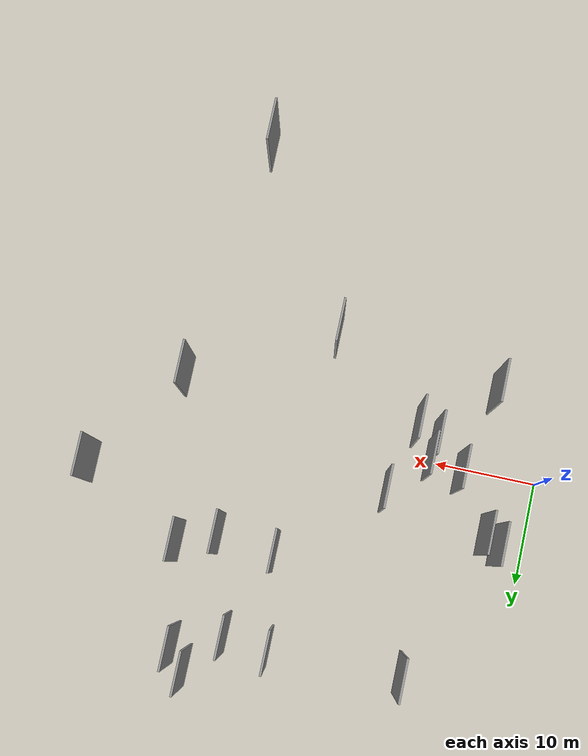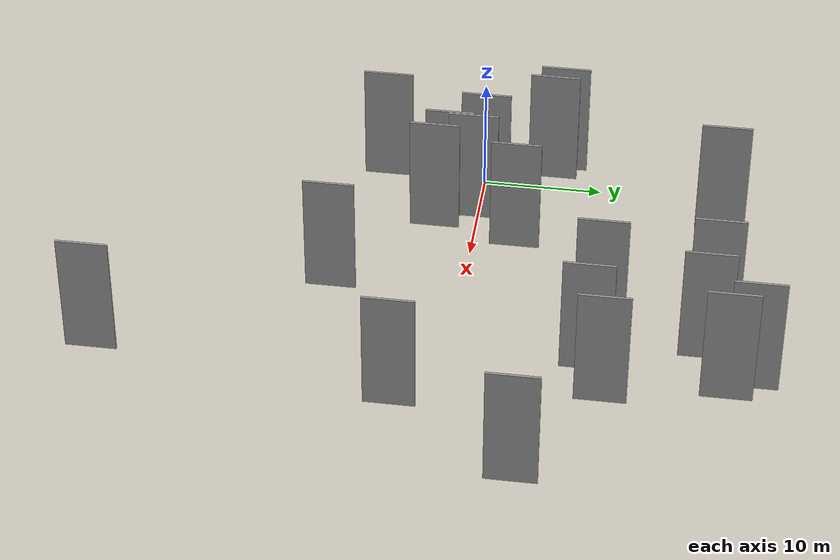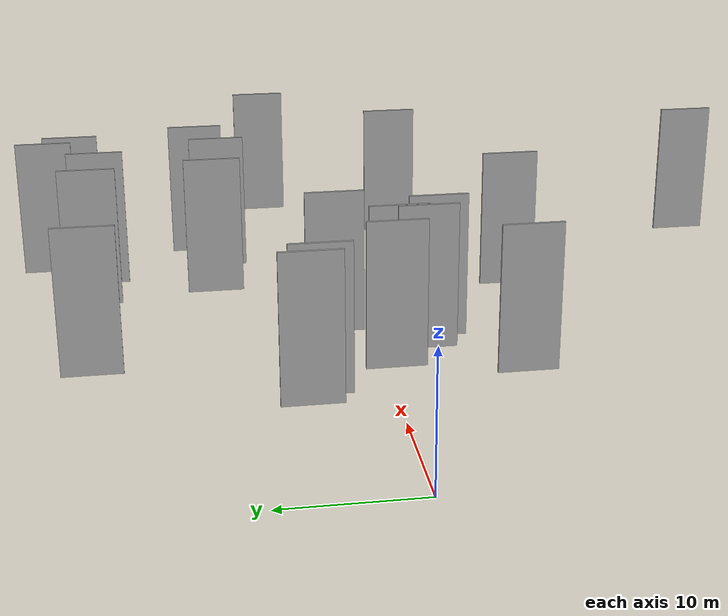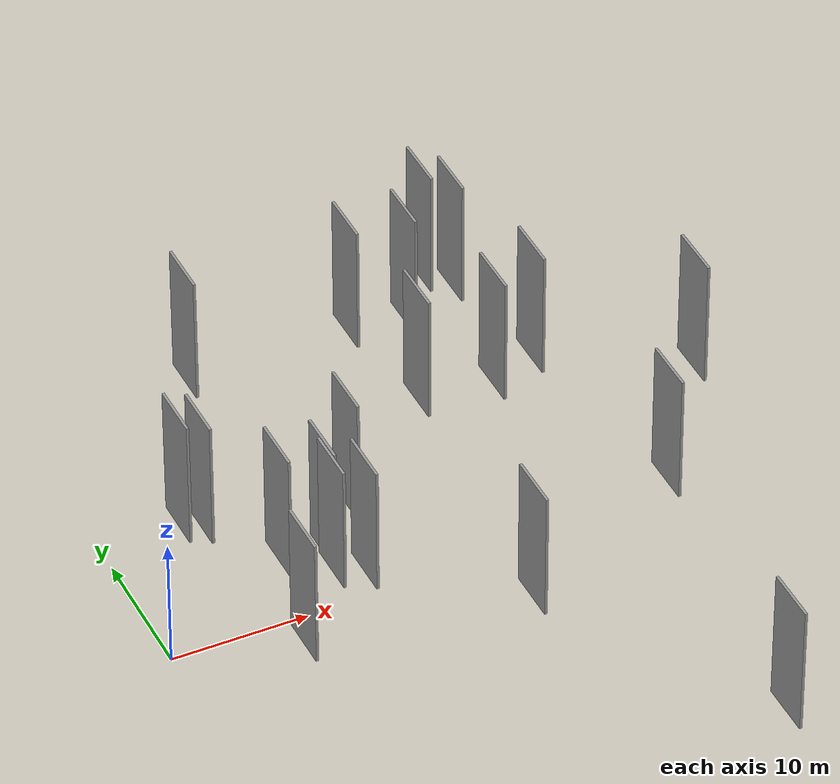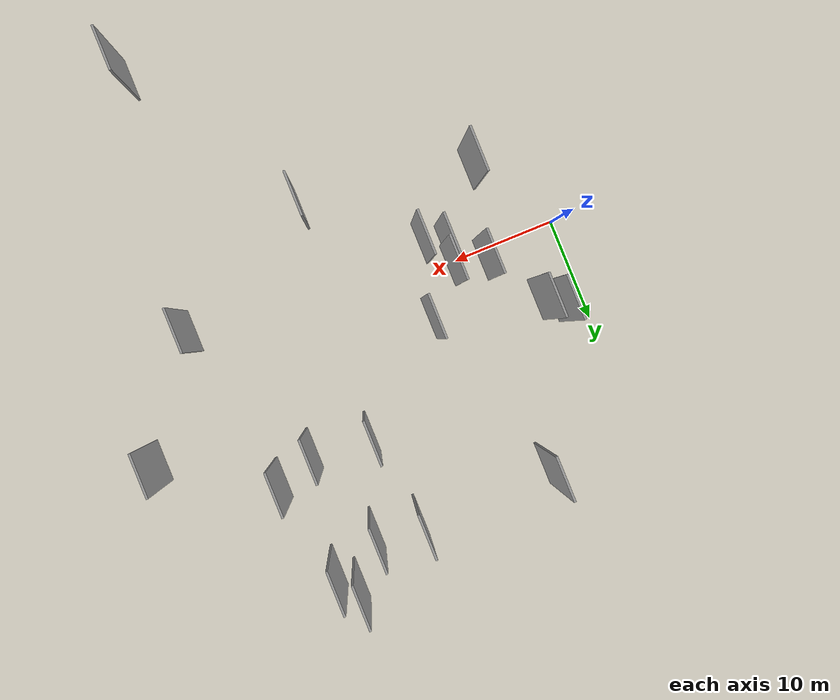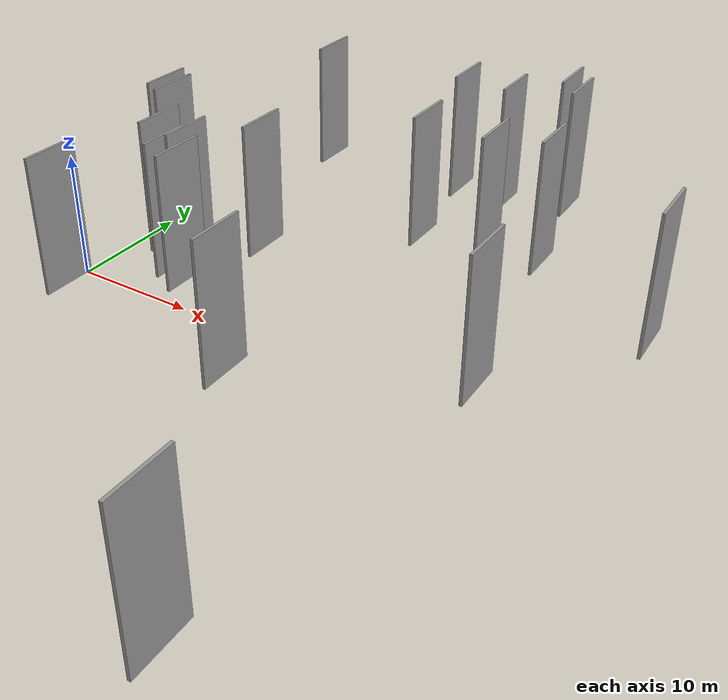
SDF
<sdf version="1.6">
 <world name="default">
  <scene>
   <sky><clouds><speed>12</speed></clouds></sky>
   <ambient>0.4 0.4 0.4 1</ambient>
   <background>0.7 0.7 0.7 1</background>
   <shadows>1</shadows>
  </scene>
  <gravity>0 0 -9.8066</gravity>
  <magnetic_field>6e-06 2.3e-05 -4.2e-05</magnetic_field>
  <physics default="0" name="default_physics" type="ode">
   <ode>
    <solver>
     <type>quick</type>
     <iters>10</iters>
     <sor>1.0</sor>
     <use_dynamic_moi_rescaling>0</use_dynamic_moi_rescaling>
    </solver>
    <constraints>
     <cfm>0</cfm>
     <erp>0.2</erp>
     <contact_max_correcting_vel>100</contact_max_correcting_vel>
     <contact_surface_layer>0.001</contact_surface_layer>
    </constraints>
   </ode>
   <max_step_size>0.004</max_step_size>
   <real_time_factor>1</real_time_factor>
   <real_time_update_rate>250</real_time_update_rate>
  </physics>
  <light name="sun" type="directional">
   <pose>0 0 10 0 0 0</pose>
   <diffuse>0.8 0.8 0.8 1</diffuse>
   <specular>0.2 0.2 0.2 1</specular>
   <attenuation>
    <range>1000</range>
    <constant>0.9</constant>
    <linear>0.01</linear>
    <quadratic>0.001</quadratic>
   </attenuation>
   <direction>-0.5 0.1 -0.9</direction>
  </light>
  <model name="grey_wall_1">
   <static>1</static>
   <pose>11.1297 -1.5539 5.0 0.000000 0.000000 1.570796</pose>
   <link name="link">
    <pose>0 0 5.00 0 0 0</pose>
    <collision name="collision"><geometry><box><size>4.00 0.2 10.00</size></box></geometry></collision>
    <visual name="visual">
     <cast_shadows>0</cast_shadows>
     <geometry><box><size>4.00 0.2 10.00</size></box></geometry>
     <material>
      <script>
       <uri>model://grey_wall/materials/scripts</uri>
       <uri>model://grey_wall/materials/textures</uri>
       <name>vrc/grey_wall</name>
      </script>
     </material>
    </visual>
   </link>
  </model>
  <model name="grey_wall_2">
   <static>1</static>
   <pose>29.5291 23.8519 5.0 0.000000 0.000000 1.570796</pose>
   <link name="link">
    <pose>0 0 5.00 0 0 0</pose>
    <collision name="collision"><geometry><box><size>4.00 0.2 10.00</size></box></geometry></collision>
    <visual name="visual">
     <cast_shadows>0</cast_shadows>
     <geometry><box><size>4.00 0.2 10.00</size></box></geometry>
     <material>
      <script>
       <uri>model://grey_wall/materials/scripts</uri>
       <uri>model://grey_wall/materials/textures</uri>
       <name>vrc/grey_wall</name>
      </script>
     </material>
    </visual>
   </link>
  </model>
  <model name="grey_wall_3">
   <static>1</static>
   <pose>10.1444 20.3905 5.0 0.000000 0.000000 1.570796</pose>
   <link name="link">
    <pose>0 0 5.00 0 0 0</pose>
    <collision name="collision"><geometry><box><size>4.00 0.2 10.00</size></box></geometry></collision>
    <visual name="visual">
     <cast_shadows>0</cast_shadows>
     <geometry><box><size>4.00 0.2 10.00</size></box></geometry>
     <material>
      <script>
       <uri>model://grey_wall/materials/scripts</uri>
       <uri>model://grey_wall/materials/textures</uri>
       <name>vrc/grey_wall</name>
      </script>
     </material>
    </visual>
   </link>
  </model>
  <model name="grey_wall_4">
   <static>1</static>
   <pose>14.7933 4.1425 5.0 0.000000 0.000000 1.570796</pose>
   <link name="link">
    <pose>0 0 5.00 0 0 0</pose>
    <collision name="collision"><geometry><box><size>4.00 0.2 10.00</size></box></geometry></collision>
    <visual name="visual">
     <cast_shadows>0</cast_shadows>
     <geometry><box><size>4.00 0.2 10.00</size></box></geometry>
     <material>
      <script>
       <uri>model://grey_wall/materials/scripts</uri>
       <uri>model://grey_wall/materials/textures</uri>
       <name>vrc/grey_wall</name>
      </script>
     </material>
    </visual>
   </link>
  </model>
  <model name="grey_wall_5">
   <static>1</static>
   <pose>8.3666 0.9878 5.0 0.000000 0.000000 1.570796</pose>
   <link name="link">
    <pose>0 0 5.00 0 0 0</pose>
    <collision name="collision"><geometry><box><size>4.00 0.2 10.00</size></box></geometry></collision>
    <visual name="visual">
     <cast_shadows>0</cast_shadows>
     <geometry><box><size>4.00 0.2 10.00</size></box></geometry>
     <material>
      <script>
       <uri>model://grey_wall/materials/scripts</uri>
       <uri>model://grey_wall/materials/textures</uri>
       <name>vrc/grey_wall</name>
      </script>
     </material>
    </visual>
   </link>
  </model>
  <model name="grey_wall_6">
   <static>1</static>
   <pose>6.4763 -7.2649 5.0 0.000000 0.000000 1.570796</pose>
   <link name="link">
    <pose>0 0 5.00 0 0 0</pose>
    <collision name="collision"><geometry><box><size>4.00 0.2 10.00</size></box></geometry></collision>
    <visual name="visual">
     <cast_shadows>0</cast_shadows>
     <geometry><box><size>4.00 0.2 10.00</size></box></geometry>
     <material>
      <script>
       <uri>model://grey_wall/materials/scripts</uri>
       <uri>model://grey_wall/materials/textures</uri>
       <name>vrc/grey_wall</name>
      </script>
     </material>
    </visual>
   </link>
  </model>
  <model name="grey_wall_7">
   <static>1</static>
   <pose>31.9861 -26.5247 5.0 0.000000 0.000000 1.570796</pose>
   <link name="link">
    <pose>0 0 5.00 0 0 0</pose>
    <collision name="collision"><geometry><box><size>4.00 0.2 10.00</size></box></geometry></collision>
    <visual name="visual">
     <cast_shadows>0</cast_shadows>
     <geometry><box><size>4.00 0.2 10.00</size></box></geometry>
     <material>
      <script>
       <uri>model://grey_wall/materials/scripts</uri>
       <uri>model://grey_wall/materials/textures</uri>
       <name>vrc/grey_wall</name>
      </script>
     </material>
    </visual>
   </link>
  </model>
  <model name="grey_wall_8">
   <static>1</static>
   <pose>31.0269 21.9897 5.0 0.000000 0.000000 1.570796</pose>
   <link name="link">
    <pose>0 0 5.00 0 0 0</pose>
    <collision name="collision"><geometry><box><size>4.00 0.2 10.00</size></box></geometry></collision>
    <visual name="visual">
     <cast_shadows>0</cast_shadows>
     <geometry><box><size>4.00 0.2 10.00</size></box></geometry>
     <material>
      <script>
       <uri>model://grey_wall/materials/scripts</uri>
       <uri>model://grey_wall/materials/textures</uri>
       <name>vrc/grey_wall</name>
      </script>
     </material>
    </visual>
   </link>
  </model>
  <model name="grey_wall_9">
   <static>1</static>
   <pose>22.3594 20.5484 5.0 0.000000 0.000000 1.570796</pose>
   <link name="link">
    <pose>0 0 5.00 0 0 0</pose>
    <collision name="collision"><geometry><box><size>4.00 0.2 10.00</size></box></geometry></collision>
    <visual name="visual">
     <cast_shadows>0</cast_shadows>
     <geometry><box><size>4.00 0.2 10.00</size></box></geometry>
     <material>
      <script>
       <uri>model://grey_wall/materials/scripts</uri>
       <uri>model://grey_wall/materials/textures</uri>
       <name>vrc/grey_wall</name>
      </script>
     </material>
    </visual>
   </link>
  </model>
  <model name="grey_wall_10">
   <static>1</static>
   <pose>35.2709 -2.9029 5.0 0.000000 0.000000 1.570796</pose>
   <link name="link">
    <pose>0 0 5.00 0 0 0</pose>
    <collision name="collision"><geometry><box><size>4.00 0.2 10.00</size></box></geometry></collision>
    <visual name="visual">
     <cast_shadows>0</cast_shadows>
     <geometry><box><size>4.00 0.2 10.00</size></box></geometry>
     <material>
      <script>
       <uri>model://grey_wall/materials/scripts</uri>
       <uri>model://grey_wall/materials/textures</uri>
       <name>vrc/grey_wall</name>
      </script>
     </material>
    </visual>
   </link>
  </model>
  <model name="grey_wall_11">
   <static>1</static>
   <pose>29.0860 11.2136 5.0 0.000000 0.000000 1.570796</pose>
   <link name="link">
    <pose>0 0 5.00 0 0 0</pose>
    <collision name="collision"><geometry><box><size>4.00 0.2 10.00</size></box></geometry></collision>
    <visual name="visual">
     <cast_shadows>0</cast_shadows>
     <geometry><box><size>4.00 0.2 10.00</size></box></geometry>
     <material>
      <script>
       <uri>model://grey_wall/materials/scripts</uri>
       <uri>model://grey_wall/materials/textures</uri>
       <name>vrc/grey_wall</name>
      </script>
     </material>
    </visual>
   </link>
  </model>
  <model name="grey_wall_12">
   <static>1</static>
   <pose>13.0392 -2.5714 5.0 0.000000 0.000000 1.570796</pose>
   <link name="link">
    <pose>0 0 5.00 0 0 0</pose>
    <collision name="collision"><geometry><box><size>4.00 0.2 10.00</size></box></geometry></collision>
    <visual name="visual">
     <cast_shadows>0</cast_shadows>
     <geometry><box><size>4.00 0.2 10.00</size></box></geometry>
     <material>
      <script>
       <uri>model://grey_wall/materials/scripts</uri>
       <uri>model://grey_wall/materials/textures</uri>
       <name>vrc/grey_wall</name>
      </script>
     </material>
    </visual>
   </link>
  </model>
  <model name="grey_wall_13">
   <static>1</static>
   <pose>5.0522 6.2345 5.0 0.000000 0.000000 1.570796</pose>
   <link name="link">
    <pose>0 0 5.00 0 0 0</pose>
    <collision name="collision"><geometry><box><size>4.00 0.2 10.00</size></box></geometry></collision>
    <visual name="visual">
     <cast_shadows>0</cast_shadows>
     <geometry><box><size>4.00 0.2 10.00</size></box></geometry>
     <material>
      <script>
       <uri>model://grey_wall/materials/scripts</uri>
       <uri>model://grey_wall/materials/textures</uri>
       <name>vrc/grey_wall</name>
      </script>
     </material>
    </visual>
   </link>
  </model>
  <model name="grey_wall_14">
   <static>1</static>
   <pose>3.7349 6.9619 5.0 0.000000 0.000000 1.570796</pose>
   <link name="link">
    <pose>0 0 5.00 0 0 0</pose>
    <collision name="collision"><geometry><box><size>4.00 0.2 10.00</size></box></geometry></collision>
    <visual name="visual">
     <cast_shadows>0</cast_shadows>
     <geometry><box><size>4.00 0.2 10.00</size></box></geometry>
     <material>
      <script>
       <uri>model://grey_wall/materials/scripts</uri>
       <uri>model://grey_wall/materials/textures</uri>
       <name>vrc/grey_wall</name>
      </script>
     </material>
    </visual>
   </link>
  </model>
  <model name="grey_wall_15">
   <static>1</static>
   <pose>11.3576 0.3261 5.0 0.000000 0.000000 1.570796</pose>
   <link name="link">
    <pose>0 0 5.00 0 0 0</pose>
    <collision name="collision"><geometry><box><size>4.00 0.2 10.00</size></box></geometry></collision>
    <visual name="visual">
     <cast_shadows>0</cast_shadows>
     <geometry><box><size>4.00 0.2 10.00</size></box></geometry>
     <material>
      <script>
       <uri>model://grey_wall/materials/scripts</uri>
       <uri>model://grey_wall/materials/textures</uri>
       <name>vrc/grey_wall</name>
      </script>
     </material>
    </visual>
   </link>
  </model>
  <model name="grey_wall_16">
   <static>1</static>
   <pose>23.6313 11.7906 5.0 0.000000 0.000000 1.570796</pose>
   <link name="link">
    <pose>0 0 5.00 0 0 0</pose>
    <collision name="collision"><geometry><box><size>4.00 0.2 10.00</size></box></geometry></collision>
    <visual name="visual">
     <cast_shadows>0</cast_shadows>
     <geometry><box><size>4.00 0.2 10.00</size></box></geometry>
     <material>
      <script>
       <uri>model://grey_wall/materials/scripts</uri>
       <uri>model://grey_wall/materials/textures</uri>
       <name>vrc/grey_wall</name>
      </script>
     </material>
    </visual>
   </link>
  </model>
  <model name="grey_wall_17">
   <static>1</static>
   <pose>32.6842 12.6588 5.0 0.000000 0.000000 1.570796</pose>
   <link name="link">
    <pose>0 0 5.00 0 0 0</pose>
    <collision name="collision"><geometry><box><size>4.00 0.2 10.00</size></box></geometry></collision>
    <visual name="visual">
     <cast_shadows>0</cast_shadows>
     <geometry><box><size>4.00 0.2 10.00</size></box></geometry>
     <material>
      <script>
       <uri>model://grey_wall/materials/scripts</uri>
       <uri>model://grey_wall/materials/textures</uri>
       <name>vrc/grey_wall</name>
      </script>
     </material>
    </visual>
   </link>
  </model>
  <model name="grey_wall_18">
   <static>1</static>
   <pose>21.9645 -9.5966 5.0 0.000000 0.000000 1.570796</pose>
   <link name="link">
    <pose>0 0 5.00 0 0 0</pose>
    <collision name="collision"><geometry><box><size>4.00 0.2 10.00</size></box></geometry></collision>
    <visual name="visual">
     <cast_shadows>0</cast_shadows>
     <geometry><box><size>4.00 0.2 10.00</size></box></geometry>
     <material>
      <script>
       <uri>model://grey_wall/materials/scripts</uri>
       <uri>model://grey_wall/materials/textures</uri>
       <name>vrc/grey_wall</name>
      </script>
     </material>
    </visual>
   </link>
  </model>
  <model name="grey_wall_19">
   <static>1</static>
   <pose>26.5255 20.0695 5.0 0.000000 0.000000 1.570796</pose>
   <link name="link">
    <pose>0 0 5.00 0 0 0</pose>
    <collision name="collision"><geometry><box><size>4.00 0.2 10.00</size></box></geometry></collision>
    <visual name="visual">
     <cast_shadows>0</cast_shadows>
     <geometry><box><size>4.00 0.2 10.00</size></box></geometry>
     <material>
      <script>
       <uri>model://grey_wall/materials/scripts</uri>
       <uri>model://grey_wall/materials/textures</uri>
       <name>vrc/grey_wall</name>
      </script>
     </material>
    </visual>
   </link>
  </model>
  <model name="grey_wall_20">
   <static>1</static>
   <pose>42.3182 7.0560 5.0 0.000000 0.000000 1.570796</pose>
   <link name="link">
    <pose>0 0 5.00 0 0 0</pose>
    <collision name="collision"><geometry><box><size>4.00 0.2 10.00</size></box></geometry></collision>
    <visual name="visual">
     <cast_shadows>0</cast_shadows>
     <geometry><box><size>4.00 0.2 10.00</size></box></geometry>
     <material>
      <script>
       <uri>model://grey_wall/materials/scripts</uri>
       <uri>model://grey_wall/materials/textures</uri>
       <name>vrc/grey_wall</name>
      </script>
     </material>
    </visual>
   </link>
  </model>
 </world>
</sdf>
